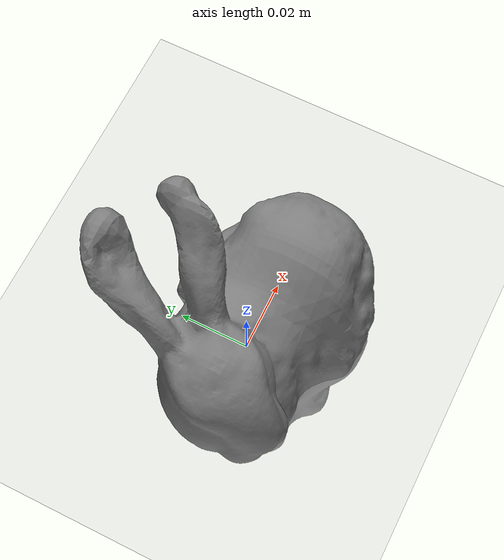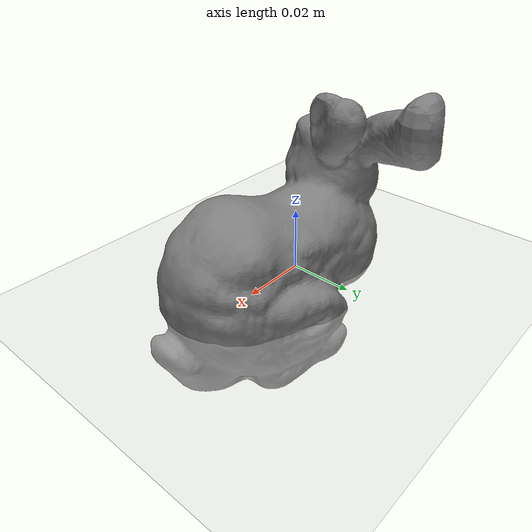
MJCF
<mujoco model="three_fingertips_scene">
<visual>
  <global offwidth="1280" offheight="960"/>
</visual>

    <compiler angle="radian"/>
    <size njmax="500" nconmax="100"/>
    <asset>
        <mesh name="object" file="../assets/objects/bunny.stl" scale="0.8 0.8 0.8"/>
        <texture type="2d" name="groundplane" builtin="checker" mark="edge" rgb1="0.2 0.3 0.4"
        rgb2="0.1 0.2 0.3" markrgb="0.8 0.8 0.8" width="300" height="300"/>
        <material name="groundplane" texture="groundplane" texuniform="true" texrepeat="5 5"
        reflectance="0.0"/>
    </asset>

    <worldbody>
        <light directional="true" ambient="0.6 0.6 0.6" diffuse="0.8 0.8 0.8"  castshadow="false" pos="0 1 4" dir="0 0 -1" name="light0"/>
        <camera name="demo-cam" pos="0.086 -0.324 0.157" xyaxes="0.966 0.259 0.000 -0.102 0.380 0.919"/>
        <camera name="demo-cam2" pos="0.070 -0.509 0.164" xyaxes="0.991 0.132 -0.000 -0.032 0.243 0.969"/>
        <camera name="demo-cam3" pos="-0.001 -0.368 0.475" xyaxes="1.000 -0.003 0.000 0.002 0.790 0.613"/>

        <!-- ============================= virtual obj ========================================= -->
        <body name="goal" >
            <geom name="goal" type="mesh" mesh="object" conaffinity="0" contype="0"
                pos="0.015 0.0 -0.005" quat="1 0 0 0"
                rgba="0.0 0.5 0.0 0.3"/>
        </body>

        <!-- ============================= real obj ========================================= -->
        <body name="obj" >
            <freejoint name="object_table"/>
            <geom name="obj" type="mesh" mesh="object"
                pos="0.015 0.0 -0.005" quat="1 0 0 0"
                mass="0.01"
                condim="6"
                friction="0.9" rgba="0.5 0.5 0.5 1.0"/>
        </body>

        <geom name="table" rgba="0.8 0.8 0.8 1.0" friction="0.5"
                size="0 0 0.05" type="plane" material="groundplane"
                condim="6"
              />

        <body name="fingertip0" pos="0.0 0.0 0.0" quat="1 0 0 0">
            <joint name="fingertip0_x" type="slide" axis="1 0 0"/>
            <joint name="fingertip0_y" type="slide" axis="0 1 0"/>
            <joint name="fingertip0_z" type="slide" axis="0 0 1"/>
            <geom name="fingertip0"
                condim="6"
                pos="0.0 0.0 0.0" quat="1 0 0 0"
                size="0.01" type="sphere" friction="0.5" rgba="0.5 0 0 1"/>
        </body>

        <body name="fingertip1" pos="0.0 0.0 0.0" quat="1 0 0 0">
            <joint name="fingertip1_x" type="slide" axis="1 0 0"/>
            <joint name="fingertip1_y" type="slide" axis="0 1 0"/>
            <joint name="fingertip1_z" type="slide" axis="0 0 1"/>
            <geom name="fingertip1"
                condim="6"
                pos="0.0 0.0 0.0" quat="1 0 0 0"
                size="0.01" type="sphere" friction="0.5" rgba="0 0.5 0 1"/>
        </body>

        <body name="fingertip2" pos="0.0 0.0 0.0" quat="1 0 0 0">
            <joint name="fingertip2_x" type="slide" axis="1 0 0"/>
            <joint name="fingertip2_y" type="slide" axis="0 1 0"/>
            <joint name="fingertip2_z" type="slide" axis="0 0 1"/>
            <geom name="fingertip2"
                condim="6"
                pos="0.0 0.0 0.0" quat="1 0 0 0"
                size="0.01" type="sphere" friction="0.5" rgba="0 0 0.5 1"/>
        </body>

    </worldbody>

    <actuator>
        <motor name="fingertip0_refx" joint="fingertip0_x"  ctrllimited="false"/>
        <motor name="fingertip0_refy" joint="fingertip0_y"  ctrllimited="false"/>
        <motor name="fingertip0_refz" joint="fingertip0_z"  ctrllimited="false"/>
        <motor name="fingertip1_refx" joint="fingertip1_x"  ctrllimited="false"/>
        <motor name="fingertip1_refy" joint="fingertip1_y"  ctrllimited="false"/>
        <motor name="fingertip1_refz" joint="fingertip1_z"  ctrllimited="false"/>
        <motor name="fingertip2_refx" joint="fingertip2_x"  ctrllimited="false"/>
        <motor name="fingertip2_refy" joint="fingertip2_y"  ctrllimited="false"/>
        <motor name="fingertip2_refz" joint="fingertip2_z"  ctrllimited="false"/>
    </actuator>
</mujoco>
